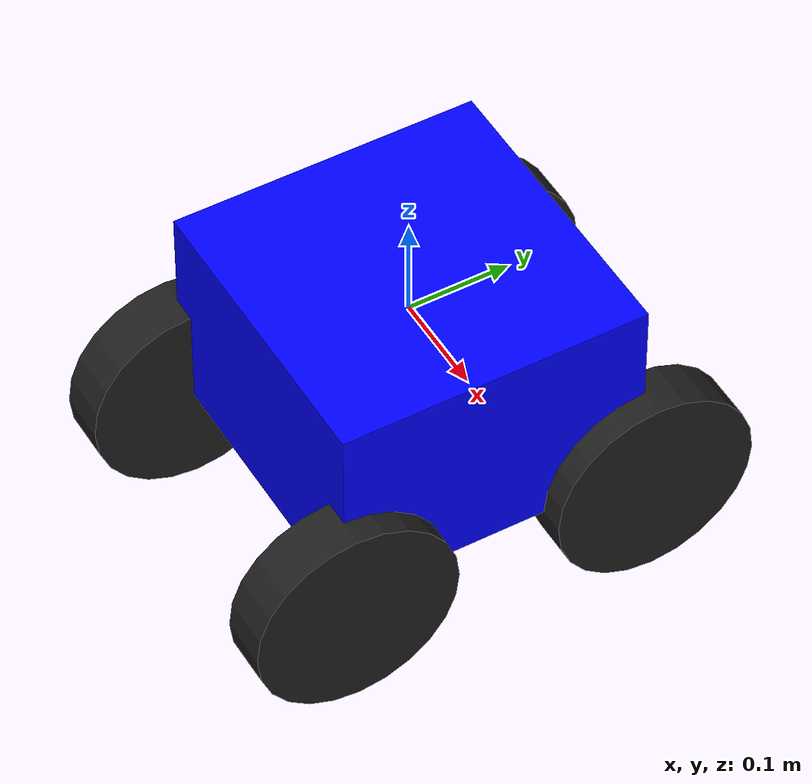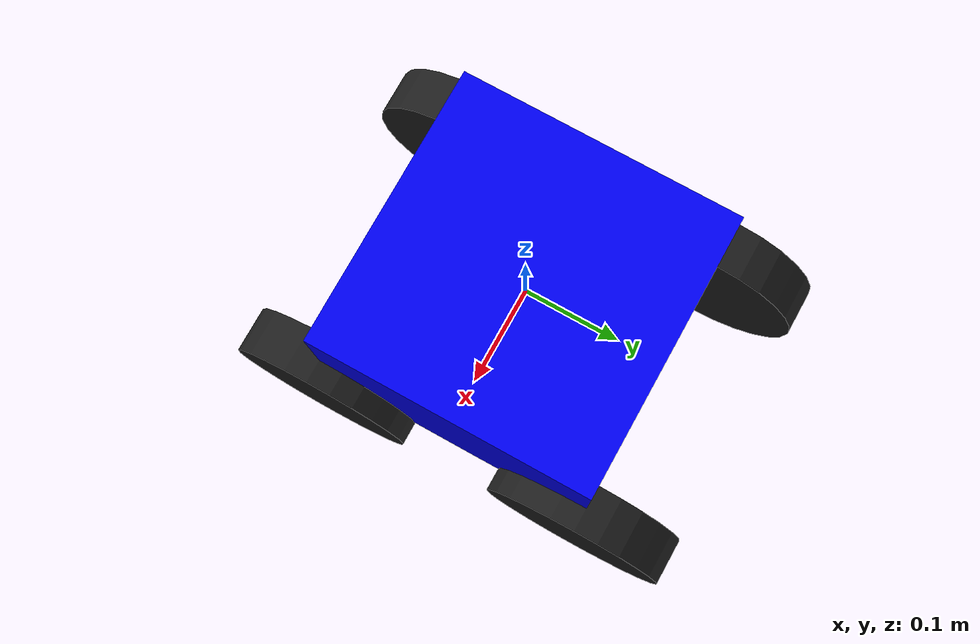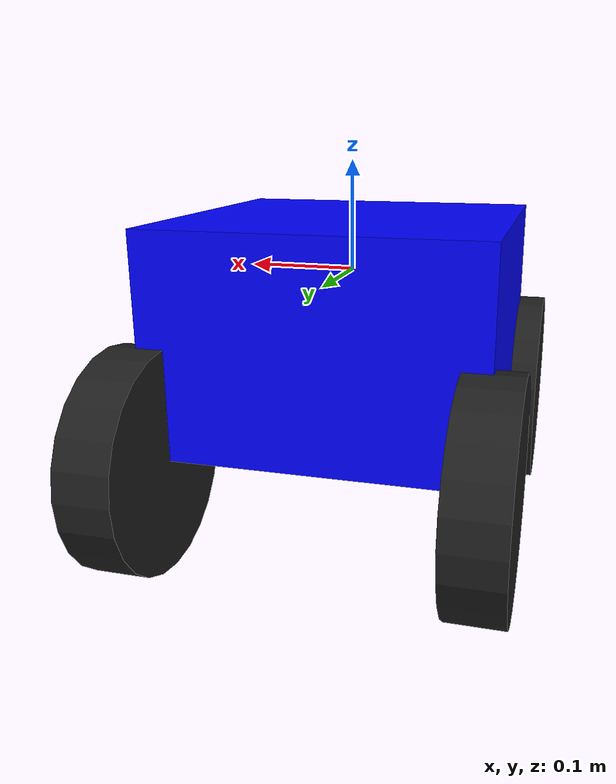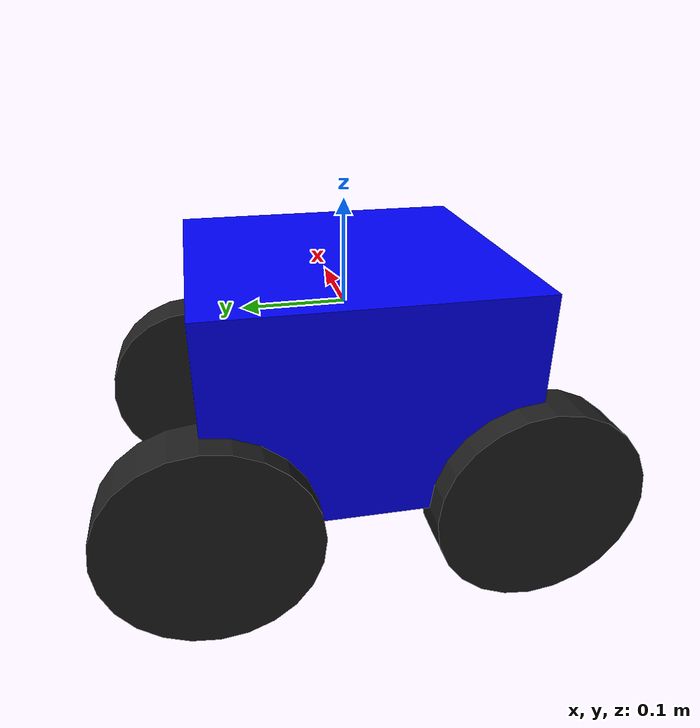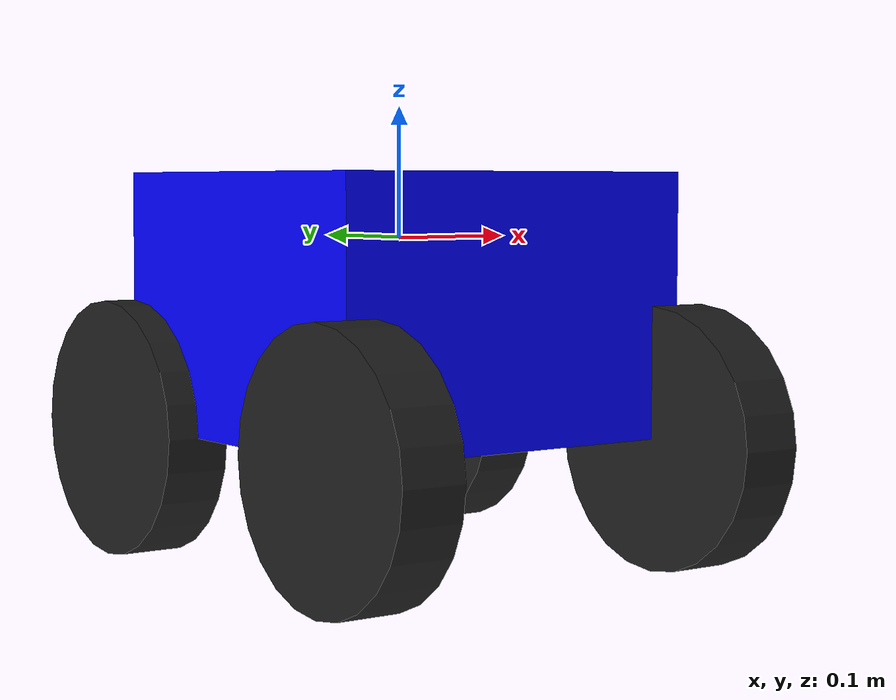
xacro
<robot name="mini_bot" xmlns:xacro="http://www.ros.org/wiki/xacro">
  <link name="base_link">
    <visual>
      <origin xyz="0 0 -0.05"/>
      <geometry>
        <box size="0.30 0.30 0.20"/>
      </geometry>
      <material name="blue">
        <color rgba="0 0 1 1"/>
      </material>
    </visual>

    <collision>
      <origin xyz="0 0 -0.05"/>
      <geometry>
        <box size="0.30 0.30 0.10"/>
      </geometry>
    </collision>

    <inertial>
      <origin xyz="0 0 -0.05"/>
      <mass value="5.0"/>
      <inertia
        ixx="0.1" iyy="0.1" izz="0.1"
        ixy="0" ixz="0" iyz="0"/>
    </inertial>

  </link>

  <gazebo reference="base_link">
    <material>Gazebo/Blue</material>
  </gazebo>

  <xacro:macro name="wheel" params="name x y">

    <link name="${name}">
      <visual>
        <geometry>
          <cylinder radius="0.10" length="0.05"/>
        </geometry>
      </visual>

      <collision>
        <geometry>
          <cylinder radius="0.10" length="0.05"/>
        </geometry>
      </collision>

      <inertial>
        <mass value="0.5"/>
        <origin xyz="0 0 0"/>
        <inertia
          ixx="0.001" iyy="0.001" izz="0.001"
          ixy="0" ixz="0" iyz="0"/>
      </inertial>
    </link>

    <joint name="${name}_joint" type="continuous">
      <parent link="base_link"/>
      <child link="${name}"/>
      <origin xyz="${x} ${y} -0.15" rpy="0 1.5708 0"/>
      <axis xyz="0 1 0"/>
    </joint>

    <gazebo reference="${name}">
      <material>Gazebo/Black</material>
      <mu1>1.0</mu1>
      <mu2>1.0</mu2>
      <kp>100000.0</kp>
      <kd>10.0</kd>
    </gazebo>

  </xacro:macro>

  <xacro:wheel name="wheel_fl" x="0.15" y="0.15"/>
  <xacro:wheel name="wheel_fr" x="0.15" y="-0.15"/>
  <xacro:wheel name="wheel_rl" x="-0.15" y="0.15"/>
  <xacro:wheel name="wheel_rr" x="-0.15" y="-0.15"/>

  <ros2_control name="MiniBotSystem" type="system">
    <hardware>
      <plugin>gazebo_ros2_control/GazeboSystem</plugin>
    </hardware>

    <joint name="wheel_fl_joint">
      <command_interface name="velocity"/>
      <state_interface name="position"/>
      <state_interface name="velocity"/>
    </joint>

    <joint name="wheel_fr_joint">
      <command_interface name="velocity"/>
      <state_interface name="position"/>
      <state_interface name="velocity"/>
    </joint>

    <joint name="wheel_rl_joint">
      <command_interface name="velocity"/>
      <state_interface name="position"/>
      <state_interface name="velocity"/>
    </joint>

    <joint name="wheel_rr_joint">
      <command_interface name="velocity"/>
      <state_interface name="position"/>
      <state_interface name="velocity"/>
    </joint>
  </ros2_control>

</robot>
